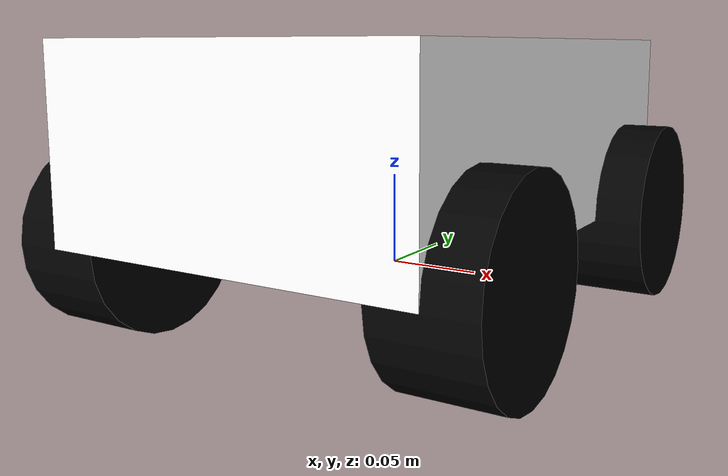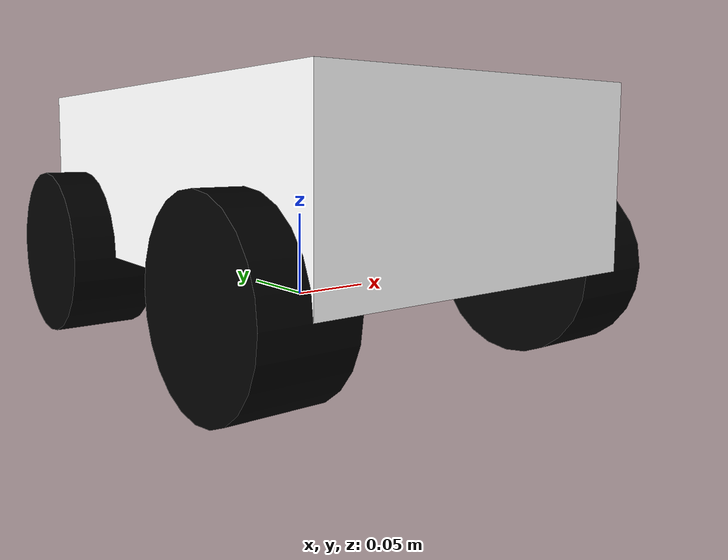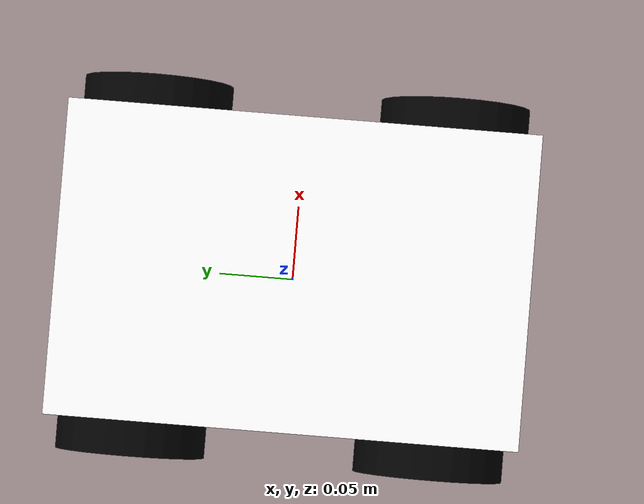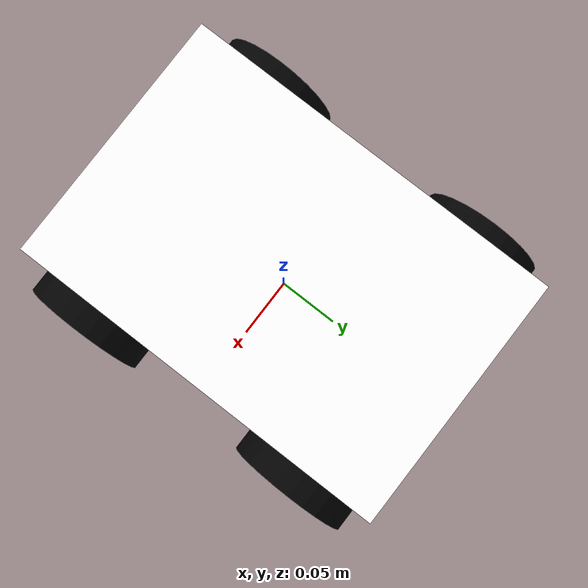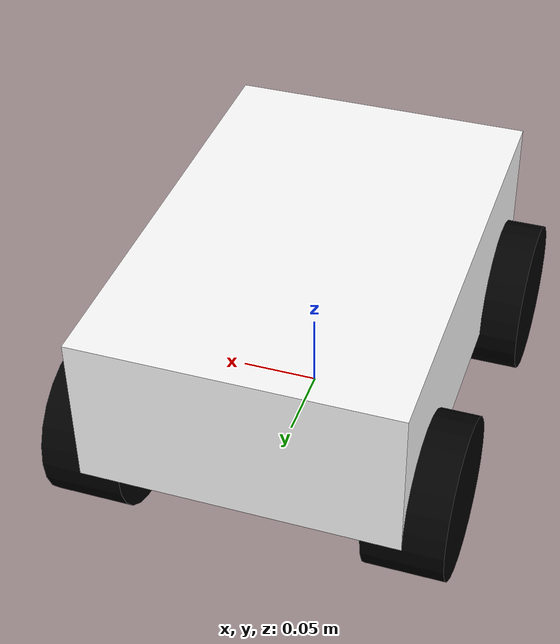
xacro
<robot name="robot1_simulation" xmlns:xacro="http://ros.org/wiki/xacro">
    <material name="black">
        <color rgba="0 0 0 1"/>
    </material>
    <xacro:macro name="wheel" params="child org_xyz">
        <joint name="base_to_${child}" type="continuous">
            <origin xyz="${org_xyz}" rpy="0 ${radians(-90)} 0"/>
            <parent link="body_link"/>
            <child link="${child}"/>
            <axis xyz="0 0 1" />
        </joint>
        <link name="${child}">
            <visual>
                <geometry>
                    <cylinder length="0.05" radius="0.05"/>
                </geometry>
                <origin rpy="0 0 0" xyz="0 0 0"/>
                <material name="black"/>
            </visual>
            <inertial>
                <origin xyz="0 0 0" rpy="0 0 0"/>
                <mass value="0.1"/>
                <inertia ixx="1" ixy="0" ixz="0" iyy="1" iyz="0" izz="1"/>
            </inertial>
            <collision>
                <origin xyz="0 0 0" rpy="0 0 0"/>
                <geometry>
                    <cylinder length="0.048" radius="0.05"/>
                </geometry>
            </collision>
        </link>
        <gazebo reference="${child}">
            <material>Gazebo/black</material>
        </gazebo>
    </xacro:macro>

    <link name="base_link"/>
    <joint name="body1_joint" type="fixed">
        <parent link="base_link"/>
        <child  link="body_link"/>
        <origin rpy="0 0 0" xyz="0 0 0.075"/>
    </joint>
    <link name="body_link">
        <visual>
            <geometry>
                <box size="0.2 0.3 0.1"/>
            </geometry>
            <origin rpy="0 0 0" xyz="0 0 0"/>
            <material name="white">
                <color rgba="1 1 1 1"/>
            </material>
        </visual>
        <inertial>
            <origin xyz="0 0 0" rpy="0 0 0"/>
            <mass value="0.1"/>
            <inertia ixx="1" ixy="0" ixz="0" iyy="1" iyz="0" izz="1"/>
        </inertial>
        <collision>
            <origin xyz="0 0 0" rpy="0 0 0"/>
            <geometry>
                <cylinder length="0.048" radius="0.05"/>
            </geometry>
        </collision>
    </link>
    <gazebo reference="body_link">
        <material>Gazebo/white</material>
    </gazebo>

    <xacro:wheel child="wheel1" org_xyz="0.1 0.1 -0.05" />
    <xacro:wheel child="wheel2" org_xyz="-0.1 0.1 -0.05" />
    <xacro:wheel child="wheel3" org_xyz="0.1 -0.1 -0.05" />
    <xacro:wheel child="wheel4" org_xyz="-0.1 -0.1 -0.05" />

</robot>
